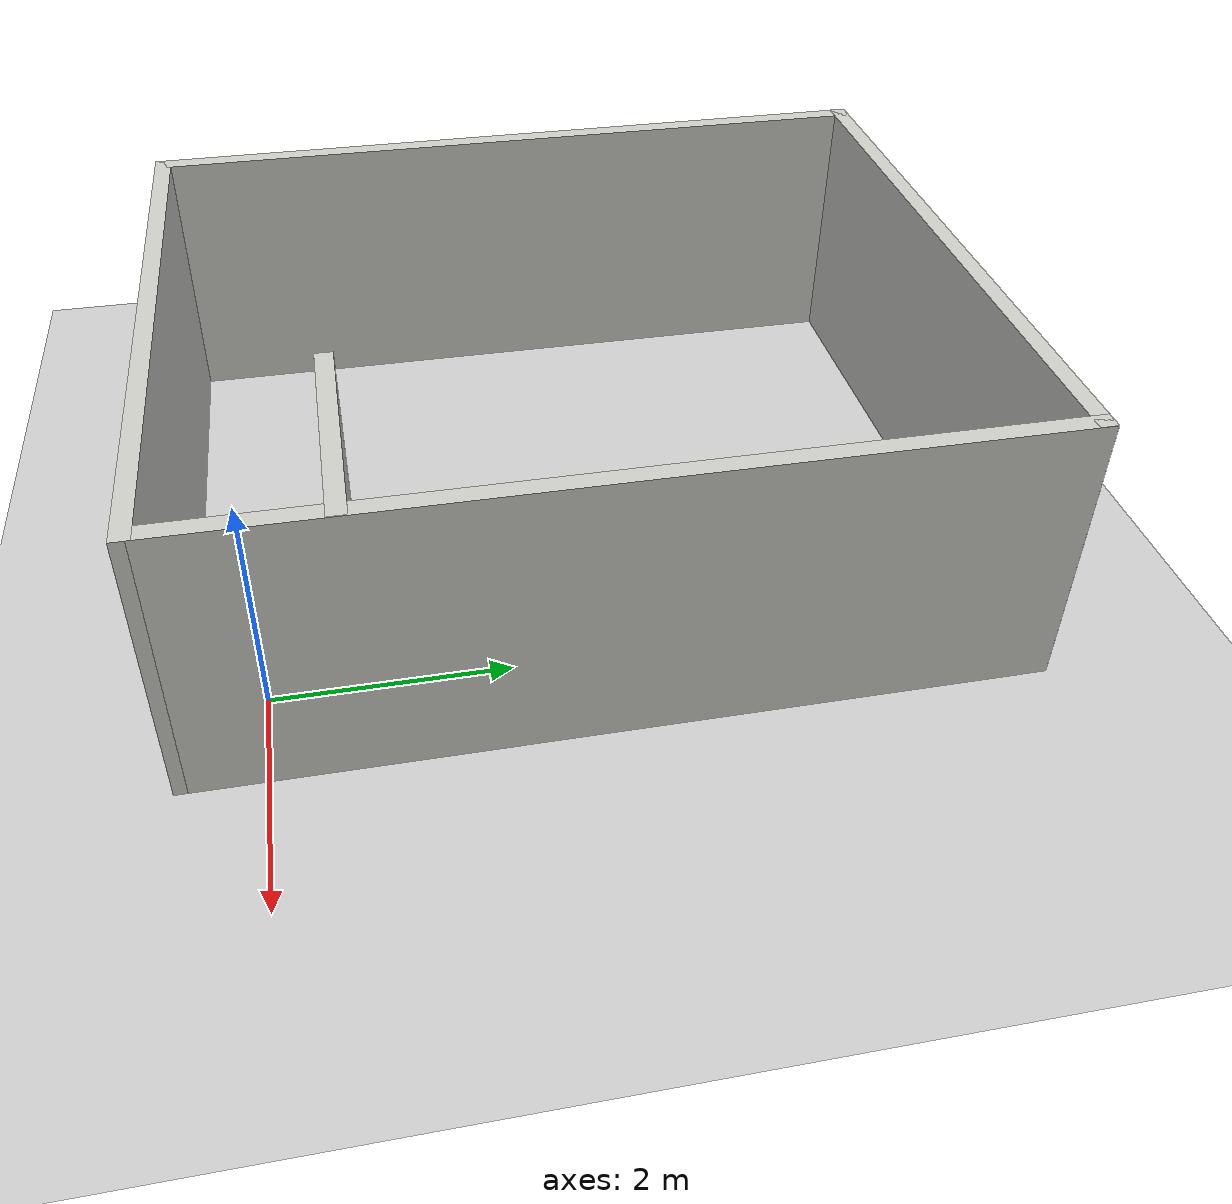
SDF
<sdf version="1.6">
 <world name="default">
  <light name="sun" type="directional">
   <pose>0 0 10 0 -0 0</pose>
   <diffuse>0.8 0.8 0.8 1</diffuse>
   <specular>0.1 0.1 0.1 1</specular>
   <attenuation>
    <range>1000</range>
    <constant>0.9</constant>
    <linear>0.01</linear>
    <quadratic>0.001</quadratic>
   </attenuation>
   <direction>-0.5 0.5 -1</direction>
  </light>
  <model name="ground_plane">
   <static>1</static>
   <link name="link">
    <collision name="collision">
     <geometry><plane><normal>0 0 1</normal><size>100 100</size></plane></geometry>
     <surface><friction><ode><mu>100</mu><mu2>50</mu2></ode></friction></surface>
    </collision>
    <visual name="visual">
     <cast_shadows>0</cast_shadows>
     <geometry><plane><normal>0 0 1</normal><size>100 100</size></plane></geometry>
     <material>
      <script><uri>file://media/materials/scripts/gazebo.material</uri><name>Gazebo/Grey</name></script>
     </material>
    </visual>
   </link>
  </model>
  <physics name="default_physics" default="0" type="ode">
   <max_step_size>0.01</max_step_size>
   <real_time_factor>1</real_time_factor>
   <real_time_update_rate>100</real_time_update_rate>
  </physics>
  <gravity>0 0 -9.8</gravity>
  <magnetic_field>6e-06 2.3e-05 -4.2e-05</magnetic_field>
  <atmosphere type="adiabatic"/>
  <scene><ambient>0.4 0.4 0.4 1</ambient><background>0.7 0.7 0.7 1</background><shadows>1</shadows></scene>
  <spherical_coordinates>
   <surface_model>EARTH_WGS84</surface_model>
   <latitude_deg>0</latitude_deg>
   <longitude_deg>0</longitude_deg>
   <elevation>0</elevation>
   <heading_deg>0</heading_deg>
  </spherical_coordinates>
  <model name="test_facility">
   <pose>-2.04122 2.80273 0 0 -0 0</pose>
   <link name="Wall_10">
    <collision name="Wall_10_Collision">
     <geometry><box><size>2 0.15 2.5</size></box></geometry>
     <pose>0 0 1.25 0 -0 0</pose>
    </collision>
    <visual name="Wall_10_Visual">
     <pose>0 0 1.25 0 -0 0</pose>
     <geometry><box><size>2 0.15 2.5</size></box></geometry>
     <material>
      <script><uri>file://media/materials/scripts/gazebo.material</uri><name>Gazebo/CeilingTiled</name></script>
      <ambient>1 1 1 1</ambient>
     </material>
    </visual>
    <pose>1.86739 -2.05305 0 0 -0 3.14159</pose>
   </link>
   <link name="Wall_2">
    <collision name="Wall_2_Collision">
     <geometry><box><size>7.0257 0.15 2.5</size></box></geometry>
     <pose>0 0 1.25 0 -0 0</pose>
    </collision>
    <visual name="Wall_2_Visual">
     <pose>0 0 1.25 0 -0 0</pose>
     <geometry><box><size>7.0257 0.15 2.5</size></box></geometry>
     <material>
      <script><uri>file://media/materials/scripts/gazebo.material</uri><name>Gazebo/CeilingTiled</name></script>
      <ambient>1 1 1 1</ambient>
     </material>
    </visual>
    <pose>-2.7981 -0.002159 0 0 -0 1.57072</pose>
   </link>
   <link name="Wall_4">
    <collision name="Wall_4_Collision">
     <geometry><box><size>5.75 0.15 2.5</size></box></geometry>
     <pose>0 0 1.25 0 -0 0</pose>
    </collision>
    <visual name="Wall_4_Visual">
     <pose>0 0 1.25 0 -0 0</pose>
     <geometry><box><size>5.75 0.15 2.5</size></box></geometry>
     <material>
      <script><uri>file://media/materials/scripts/gazebo.material</uri><name>Gazebo/CeilingTiled</name></script>
      <ambient>1 1 1 1</ambient>
     </material>
    </visual>
    <pose>0.001649 -3.44001 0 0 -0 0</pose>
   </link>
   <link name="Wall_6">
    <collision name="Wall_6_Collision">
     <geometry><box><size>5.75 0.15 2.5</size></box></geometry>
     <pose>0 0 1.25 0 -0 0</pose>
    </collision>
    <visual name="Wall_6_Visual">
     <pose>0 0 1.25 0 -0 0</pose>
     <geometry><box><size>5.75 0.15 2.5</size></box></geometry>
     <material>
      <script><uri>file://media/materials/scripts/gazebo.material</uri><name>Gazebo/CeilingTiled</name></script>
      <ambient>1 1 1 1</ambient>
     </material>
    </visual>
    <pose>-0.002164 3.44001 0 0 -0 0</pose>
   </link>
   <link name="Wall_7">
    <collision name="Wall_7_Collision">
     <geometry><box><size>7.0257 0.15 2.5</size></box></geometry>
     <pose>0 0 1.25 0 -0 0</pose>
    </collision>
    <visual name="Wall_7_Visual">
     <pose>0 0 1.25 0 -0 0</pose>
     <geometry><box><size>7.0257 0.15 2.5</size></box></geometry>
     <material>
      <script><uri>file://media/materials/scripts/gazebo.material</uri><name>Gazebo/CeilingTiled</name></script>
      <ambient>1 1 1 1</ambient>
     </material>
    </visual>
    <pose>2.8019 -0.002159 0 0 0 -1.57087</pose>
   </link>
   <static>1</static>
  </model>
 </world>
</sdf>
